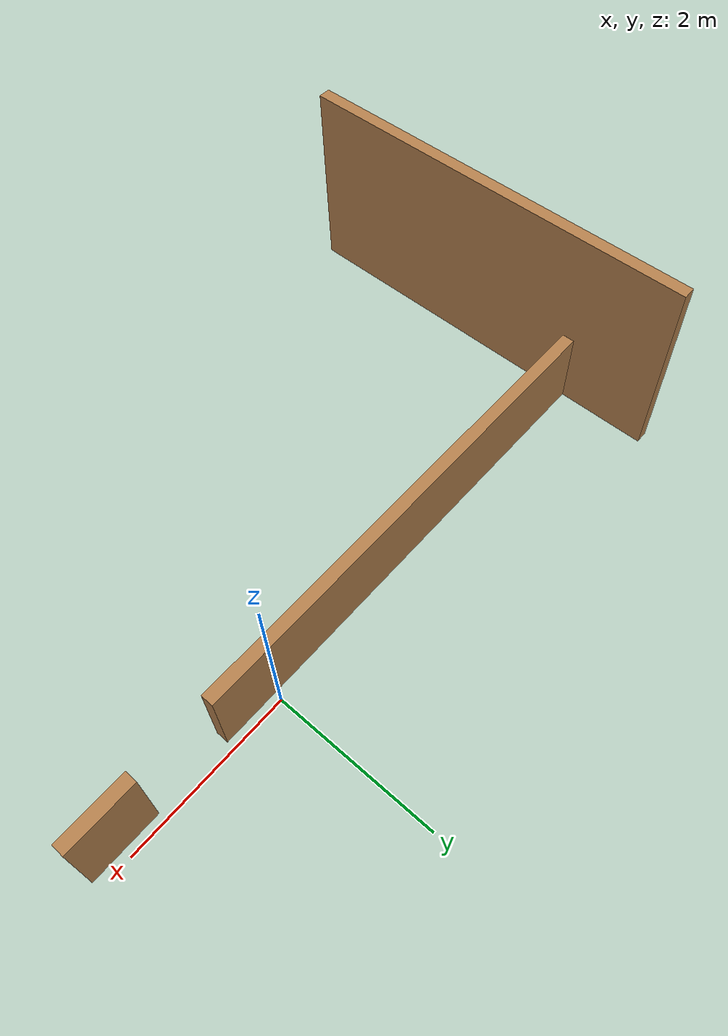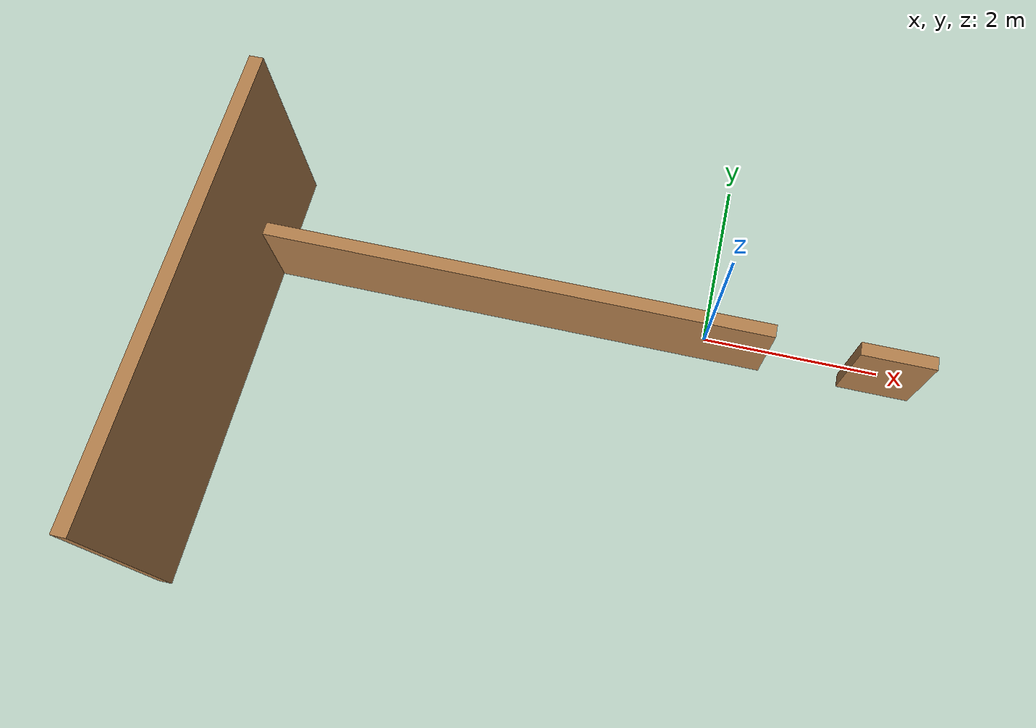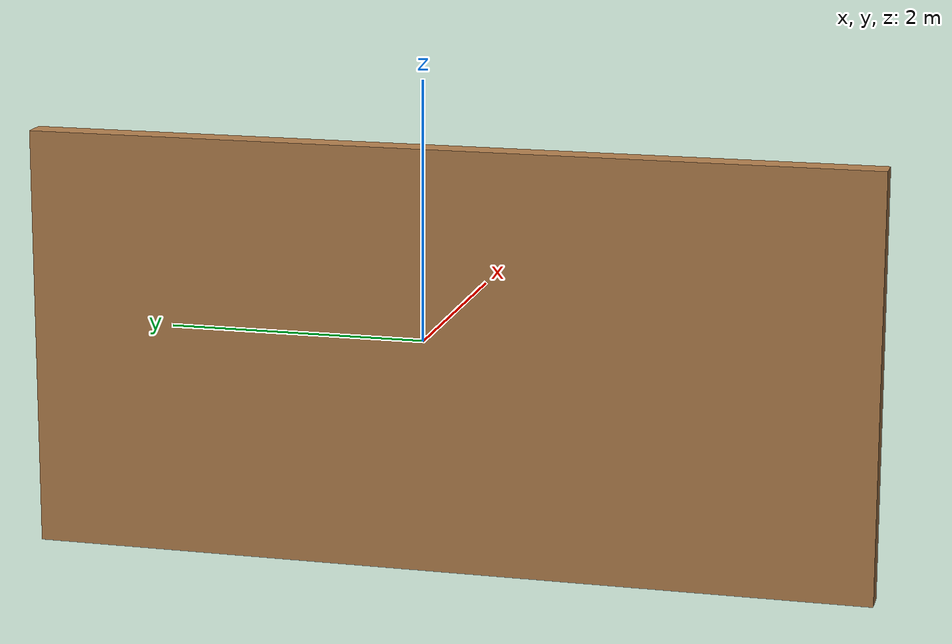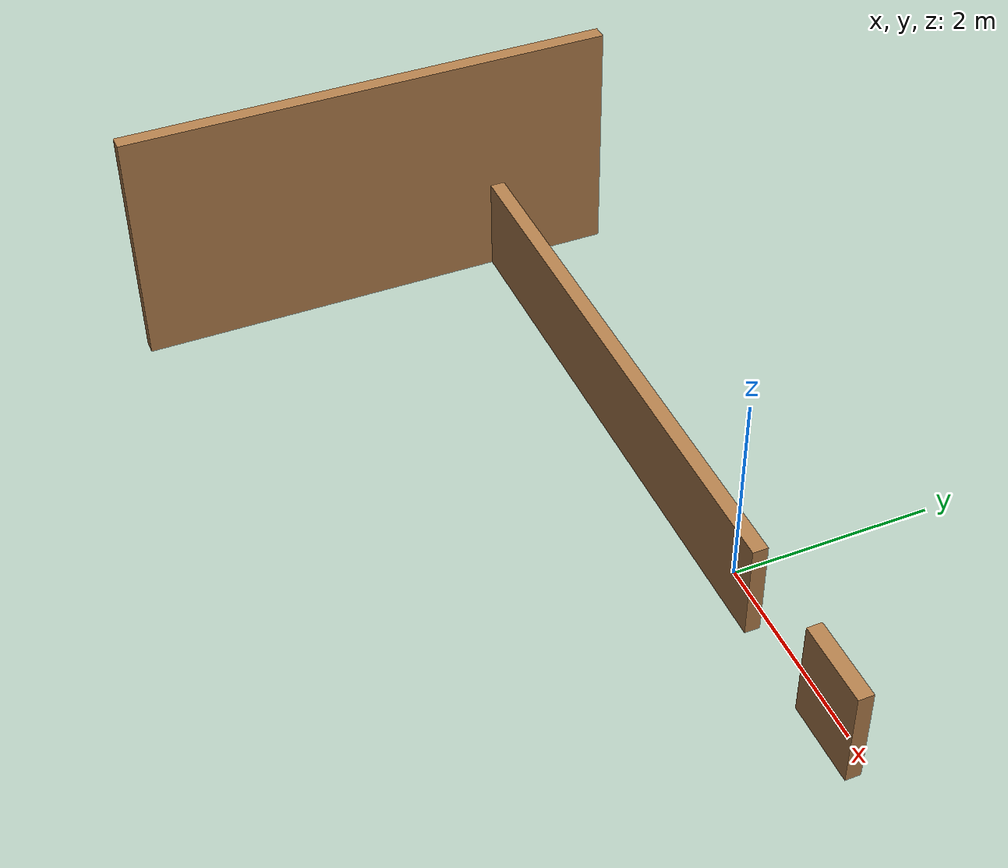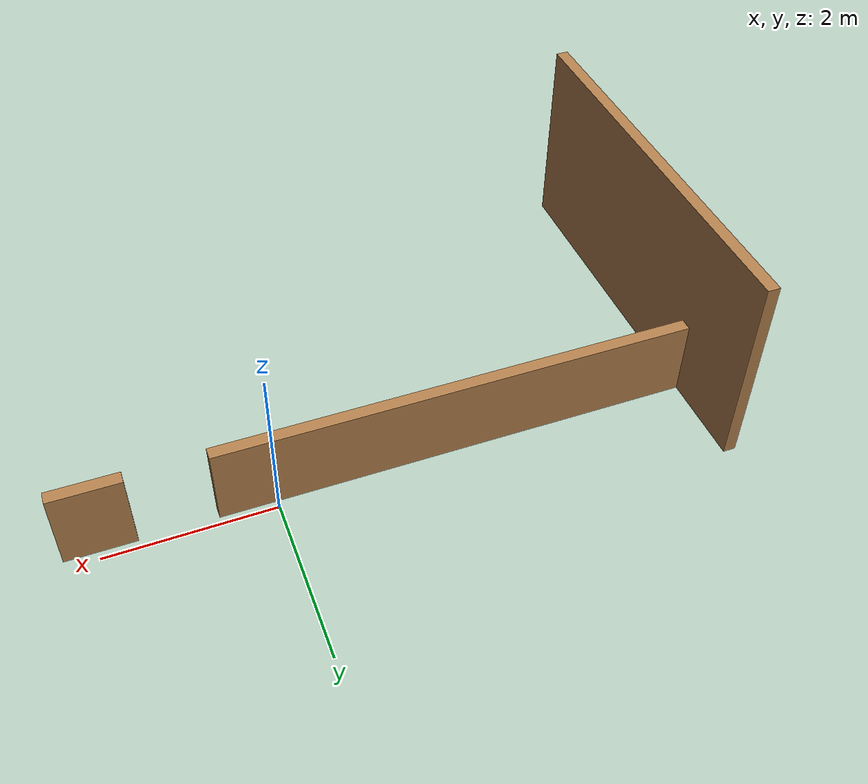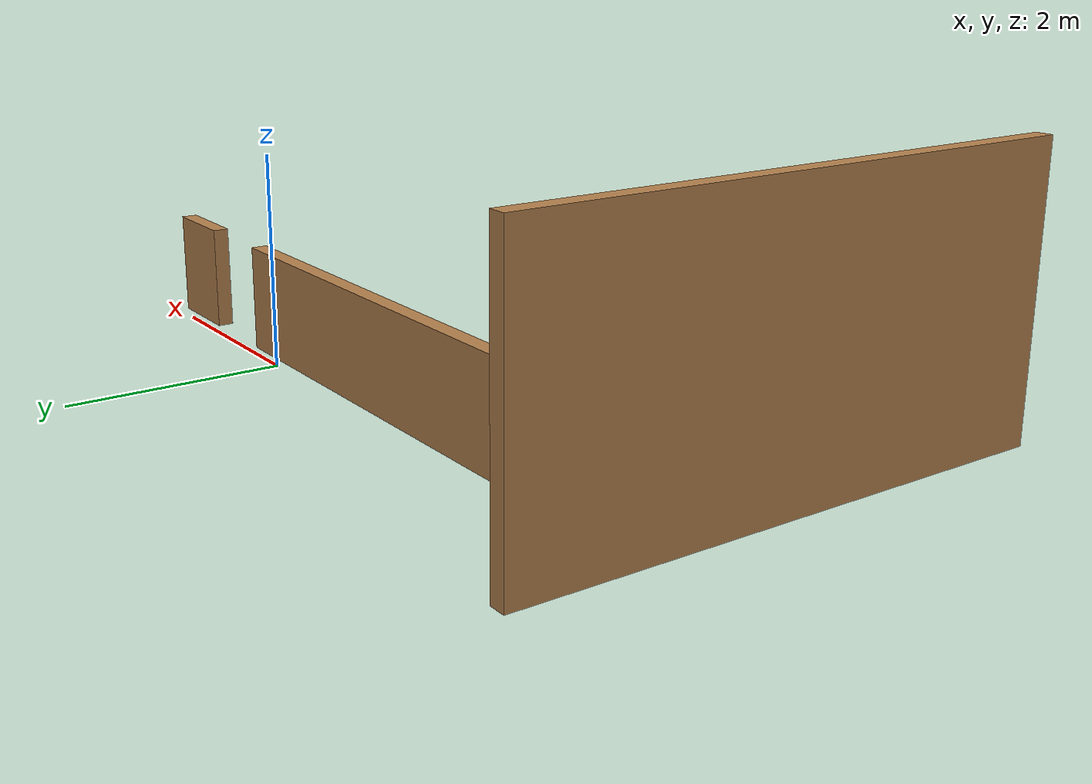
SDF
<sdf version='1.6'>
  <model name='turtlebot3_house'>

    <link name='Wall_108'>
      <pose frame=''>-1.37512 -0.17488 0 0 -0 0</pose>
      <self_collide>0</self_collide>
      <kinematic>0</kinematic>
      <visual name='Wall_108_Visual_0'>
        <pose frame=''>-0.856324 0 0.5 0 -0 0</pose>
        <geometry>
          <box>
            <size>5.78735 0.15 1</size>
          </box>
        </geometry>
        <material>
          <script>
            <uri>file://media/materials/scripts/gazebo.material</uri>
            <name>Gazebo/Wood</name>
          </script>
          <ambient>1 1 1 1</ambient>
          <diffuse>1 1 1 1</diffuse>
          <specular>0.2 0.2 0.2 1</specular>
          <emissive>0 0 0 1</emissive>
        </material>
        <cast_shadows>1</cast_shadows>
        <transparency>0</transparency>
      </visual>
      <visual name='Wall_108_Visual_1'>
        <pose frame=''>3.34368 0 0.5 0 -0 0</pose>
        <geometry>
          <box>
            <size>0.812647 0.15 1</size>
          </box>
        </geometry>
        <material>
          <script>
            <uri>file://media/materials/scripts/gazebo.material</uri>
            <name>Gazebo/Wood</name>
          </script>
          <ambient>1 1 1 1</ambient>
          <diffuse>1 1 1 1</diffuse>
          <specular>0.2 0.2 0.2 1</specular>
          <emissive>0 0 0 1</emissive>
        </material>
        <cast_shadows>1</cast_shadows>
        <transparency>0</transparency>
      </visual>
      <collision name='Wall_108_Collision_1'>
        <laser_retro>0</laser_retro>
        <max_contacts>10</max_contacts>
        <pose frame=''>3.34368 0 0.5 0 -0 0</pose>
        <geometry>
          <box>
            <size>0.812647 0.15 1</size>
          </box>
        </geometry>
        <surface>
          <friction>
            <ode>
              <mu>1</mu>
              <mu2>1</mu2>
              <fdir1>0 0 0</fdir1>
              <slip1>0</slip1>
              <slip2>0</slip2>
            </ode>
            <torsional>
              <coefficient>1</coefficient>
              <patch_radius>0</patch_radius>
              <surface_radius>0</surface_radius>
              <use_patch_radius>1</use_patch_radius>
              <ode>
                <slip>0</slip>
              </ode>
            </torsional>
          </friction>
          <bounce>
            <restitution_coefficient>0</restitution_coefficient>
            <threshold>1e+06</threshold>
          </bounce>
          <contact>
            <collide_without_contact>0</collide_without_contact>
            <collide_without_contact_bitmask>1</collide_without_contact_bitmask>
            <collide_bitmask>1</collide_bitmask>
            <ode>
              <soft_cfm>0</soft_cfm>
              <soft_erp>0.2</soft_erp>
              <kp>1e+13</kp>
              <kd>1</kd>
              <max_vel>0.01</max_vel>
              <min_depth>0</min_depth>
            </ode>
            <bullet>
              <split_impulse>1</split_impulse>
              <split_impulse_penetration_threshold>-0.01</split_impulse_penetration_threshold>
              <soft_cfm>0</soft_cfm>
              <soft_erp>0.2</soft_erp>
              <kp>1e+13</kp>
              <kd>1</kd>
            </bullet>
          </contact>
        </surface>
      </collision>
      <collision name='Wall_108_Collision_0'>
        <laser_retro>0</laser_retro>
        <max_contacts>10</max_contacts>
        <pose frame=''>-0.856324 0 0.5 0 -0 0</pose>
        <geometry>
          <box>
            <size>5.78735 0.15 1</size>
          </box>
        </geometry>
        <surface>
          <friction>
            <ode>
              <mu>1</mu>
              <mu2>1</mu2>
              <fdir1>0 0 0</fdir1>
              <slip1>0</slip1>
              <slip2>0</slip2>
            </ode>
            <torsional>
              <coefficient>1</coefficient>
              <patch_radius>0</patch_radius>
              <surface_radius>0</surface_radius>
              <use_patch_radius>1</use_patch_radius>
              <ode>
                <slip>0</slip>
              </ode>
            </torsional>
          </friction>
          <bounce>
            <restitution_coefficient>0</restitution_coefficient>
            <threshold>1e+06</threshold>
          </bounce>
          <contact>
            <collide_without_contact>0</collide_without_contact>
            <collide_without_contact_bitmask>1</collide_without_contact_bitmask>
            <collide_bitmask>1</collide_bitmask>
            <ode>
              <soft_cfm>0</soft_cfm>
              <soft_erp>0.2</soft_erp>
              <kp>1e+13</kp>
              <kd>1</kd>
              <max_vel>0.01</max_vel>
              <min_depth>0</min_depth>
            </ode>
            <bullet>
              <split_impulse>1</split_impulse>
              <split_impulse_penetration_threshold>-0.01</split_impulse_penetration_threshold>
              <soft_cfm>0</soft_cfm>
              <soft_erp>0.2</soft_erp>
              <kp>1e+13</kp>
              <kd>1</kd>
            </bullet>
          </contact>
        </surface>
      </collision>
    </link>

    <link name='Wall_88'>
      <pose frame=''>-5.15151 -1.49625 0 0 -0 1.5708</pose>
      <self_collide>0</self_collide>
      <kinematic>0</kinematic>
      <visual name='Wall_88_Visual'>
        <pose frame=''>0 0 1.25 0 -0 0</pose>
        <geometry>
          <box>
            <size>5 0.15 2.5</size>
          </box>
        </geometry>
        <material>
          <script>
            <uri>file://media/materials/scripts/gazebo.material</uri>
            <name>Gazebo/Wood</name>
          </script>
          <ambient>1 1 1 1</ambient>
          <diffuse>1 1 1 1</diffuse>
          <specular>0.2 0.2 0.2 1</specular>
          <emissive>0 0 0 1</emissive>
        </material>
        <cast_shadows>1</cast_shadows>
        <transparency>0</transparency>
      </visual>
      <collision name='Wall_88_Collision'>
        <laser_retro>0</laser_retro>
        <max_contacts>10</max_contacts>
        <pose frame=''>0 0 1.25 0 -0 0</pose>
        <geometry>
          <box>
            <size>5 0.15 2.5</size>
          </box>
        </geometry>
        <surface>
          <friction>
            <ode>
              <mu>1</mu>
              <mu2>1</mu2>
              <fdir1>0 0 0</fdir1>
              <slip1>0</slip1>
              <slip2>0</slip2>
            </ode>
            <torsional>
              <coefficient>1</coefficient>
              <patch_radius>0</patch_radius>
              <surface_radius>0</surface_radius>
              <use_patch_radius>1</use_patch_radius>
              <ode>
                <slip>0</slip>
              </ode>
            </torsional>
          </friction>
          <bounce>
            <restitution_coefficient>0</restitution_coefficient>
            <threshold>1e+06</threshold>
          </bounce>
          <contact>
            <collide_without_contact>0</collide_without_contact>
            <collide_without_contact_bitmask>1</collide_without_contact_bitmask>
            <collide_bitmask>1</collide_bitmask>
            <ode>
              <soft_cfm>0</soft_cfm>
              <soft_erp>0.2</soft_erp>
              <kp>1e+13</kp>
              <kd>1</kd>
              <max_vel>0.01</max_vel>
              <min_depth>0</min_depth>
            </ode>
            <bullet>
              <split_impulse>1</split_impulse>
              <split_impulse_penetration_threshold>-0.01</split_impulse_penetration_threshold>
              <soft_cfm>0</soft_cfm>
              <soft_erp>0.2</soft_erp>
              <kp>1e+13</kp>
              <kd>1</kd>
            </bullet>
          </contact>
        </surface>
      </collision>
    </link>

    <static>1</static>
    <allow_auto_disable>1</allow_auto_disable>
  </model>
</sdf>
